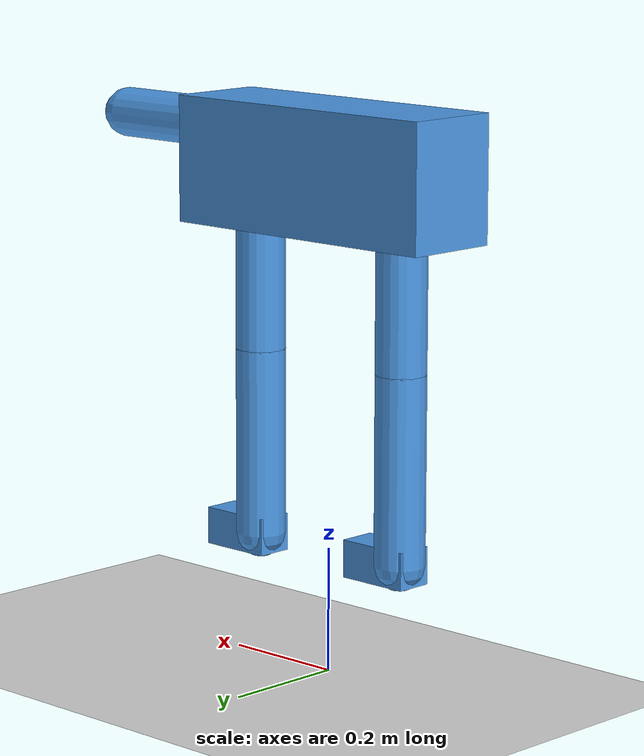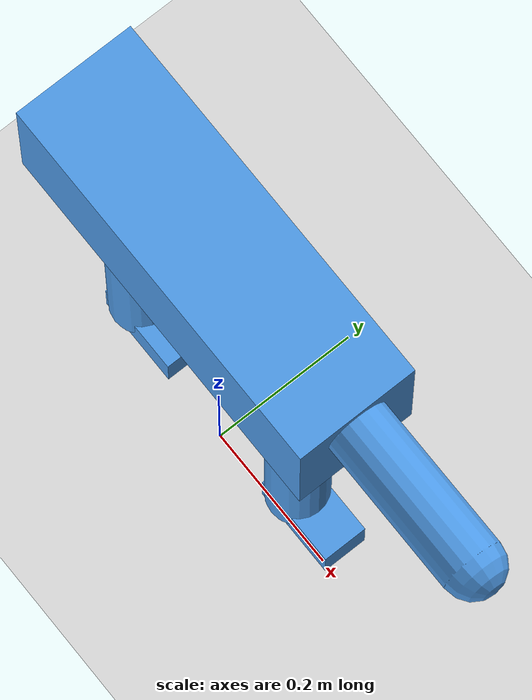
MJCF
<mujoco model="mini_biped">

  <!-- ① 全局编译设置：关节角度单位用弧度（MuJoCo 默认就是弧度，显式声明更清晰） -->
  <compiler angle="radian"/>

  <!-- ② 仿真选项：timestep=物理步长 0.01 秒/步；gravity=重力 z 轴向下 9.81 m/s2 -->
  <option timestep="0.01" gravity="0 0 -9.81"/>

  <!-- ③ 资产：材质（决定几何体颜色） -->
  <asset>
    <!-- 机器人身体：蓝色 -->
    <material name="body_mat" rgba=".3 .6 .9 1"/>
    <!-- 地面：灰色 -->
    <material name="ground_mat" rgba=".85 .85 .85 1"/>
  </asset>

  <!-- ④ 默认参数：子元素没写的属性全部继承这里，写 XML 时少重复 -->
  <default>
    <!-- 默认几何体：胶囊，半径 0.04 -->
    <geom type="capsule" size=".04" material="body_mat"/>
    <!-- 默认关节：hinge（绕 y 轴旋转），阻尼 1（被动阻力，防抖） -->
    <joint type="hinge" axis="0 1 0" damping="1"/>
    <!-- 默认电机：力矩范围 [-1,1]（这就是 action 空间的源头） -->
    <motor ctrlrange="-1 1" ctrllimited="true"/>
  </default>

  <!-- ⑤ 世界坐标系：光源、相机、地面、机器人本体 -->
  <worldbody>
    <!-- 光源：头顶 3 米处 -->
    <light pos="0 0 3"/>
    <!-- 相机：正面 3 米外，xyaxes 指定朝向 -->
    <camera name="cam" pos="0 -3 1" xyaxes="1 0 0 0 1 0"/>
    <!-- 地面：plane 平面，size 前两个数是半长宽 -->
    <geom name="ground" type="plane" size="2 2 .1" material="ground_mat"/>

    <!-- ⑥ 躯干（根 body）：pos 是世界坐标，离地 0.8 米 -->
    <body name="torso" pos="0 0 .8">
      <!-- 自由关节：躯干在世界中 6 自由度（3 平移 + 3 旋转），对比 HalfCheetah 用 3 个世界关节 -->
      <freejoint/>
      <!-- 躯干几何：长方体，size 是半尺寸 -->
      <geom type="box" size=".25 .08 .1"/>

      <!-- 左腿：thigh 到 shin 到 foot 三级嵌套，pos 相对父 body -->
      <!-- 左大腿：相对躯干 (-0.15,0,0)，即髋关节安装点 -->
      <body name="l_thigh" pos="-.15 0 0">
        <!-- 髋关节：hinge 绕 y 轴，限位 ±0.5 弧度（约 ±28.6 度） -->
        <joint name="l_hip" range="-.5 .5"/>
        <!-- 大腿几何：fromto 两点定胶囊，从髋 (0,0,0) 到膝 (0,0,-0.3) -->
        <geom fromto="0 0 0 0 0 -.3"/>
        <!-- 左小腿：相对大腿向下 0.3 -->
        <body name="l_shin" pos="0 0 -.3">
          <!-- 膝关节：只能向后弯 0 到 -1.2 弧度（大腿不会向前折） -->
          <joint name="l_knee" range="-1.2 0"/>
          <geom fromto="0 0 0 0 0 -.3"/>
          <!-- 左脚：相对小腿向下 0.3 -->
          <body name="l_foot" pos="0 0 -.3">
            <!-- 脚掌：往前伸的小方块 -->
            <geom type="box" size=".06 .03 .03" pos=".03 0 0"/>
          </body>
        </body>
      </body>

      <!-- 右腿：结构与左腿完全相同（右髋由 tendon 联动，见⑦） -->
      <body name="r_thigh" pos=".15 0 0">
        <joint name="r_hip" range="-.5 .5"/>
        <geom fromto="0 0 0 0 0 -.3"/>
        <body name="r_shin" pos="0 0 -.3">
          <joint name="r_knee" range="-1.2 0"/>
          <geom fromto="0 0 0 0 0 -.3"/>
          <body name="r_foot" pos="0 0 -.3">
            <geom type="box" size=".06 .03 .03" pos=".03 0 0"/>
          </body>
        </body>
      </body>

      <!-- 手臂：用来演示 position 执行器（伺服，ctrl 给目标角度） -->
      <body name="arm" pos=".25 0 .05">
        <!-- 肘关节：绕 z 轴侧摆（和腿的 y 轴区分开），限位 0~1.5 弧度 -->
        <joint name="elbow" axis="0 0 1" range="0 1.5"/>
        <!-- 手臂几何：水平向前伸的胶囊 -->
        <geom fromto="0 0 0 .2 0 0"/>
      </body>
    </body>
  </worldbody>

  <!-- ⑦ 肌腱：把两个髋关节绑起来（机械联动） -->
  <tendon>
    <!-- 固定长度肌腱：长度 = 1×左髋角度 + (-1)×右髋角度 = 常数 -->
    <fixed name="hip_link">
      <!-- 左髋 +1 倍角度 -->
      <joint joint="l_hip" coef="1"/>
      <!-- 右髋 -1 倍角度（反向！） -->
      <joint joint="r_hip" coef="-1"/>
    </fixed>
  </tendon>
  <!-- 效果：左髋往前摆多少度，右髋自动往后摆多少度 -->
  <!-- 这就是行走步态里的反相联动：一个 hip_motor 带两条腿 -->

  <!-- ⑧ 执行器：3 个电机（力矩控制）+ 1 个位置伺服（角度控制） -->
  <actuator>
    <!-- 左髋电机：motor=给力矩；gear=50 传动比（力矩放大倍数） -->
    <motor name="hip_motor" joint="l_hip" gear="50"/>
    <!-- 左膝电机 -->
    <motor name="l_knee_motor" joint="l_knee" gear="30"/>
    <!-- 右膝电机 -->
    <motor name="r_knee_motor" joint="r_knee" gear="30"/>
    <!-- 手臂位置伺服：position=ctrl 是目标角度，kp=伺服刚度，像 UR5e 那样有伺服帮忙转 -->
    <position name="elbow_pos" joint="elbow" kp="50"/>
  </actuator>

  <!-- ⑨ 传感器：读状态（给 RL 当 obs 或调试用） -->
  <sensor>
    <!-- 左髋角度（弧度） -->
    <jointpos joint="l_hip"/>
    <!-- 左膝角速度（弧度/秒） -->
    <jointvel joint="l_knee"/>
    <!-- 左髋关节受到的执行器合力（腱+电机的总反作用力） -->
    <jointactuatorfrc joint="l_hip"/>
  </sensor>

</mujoco>
